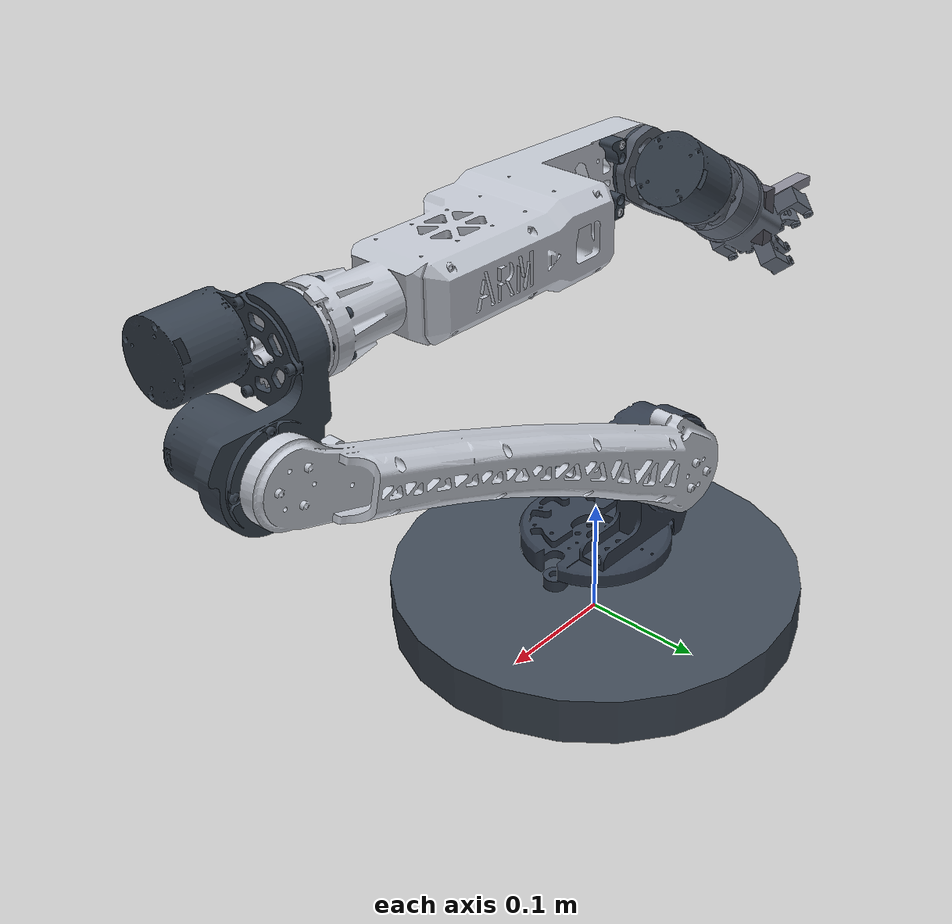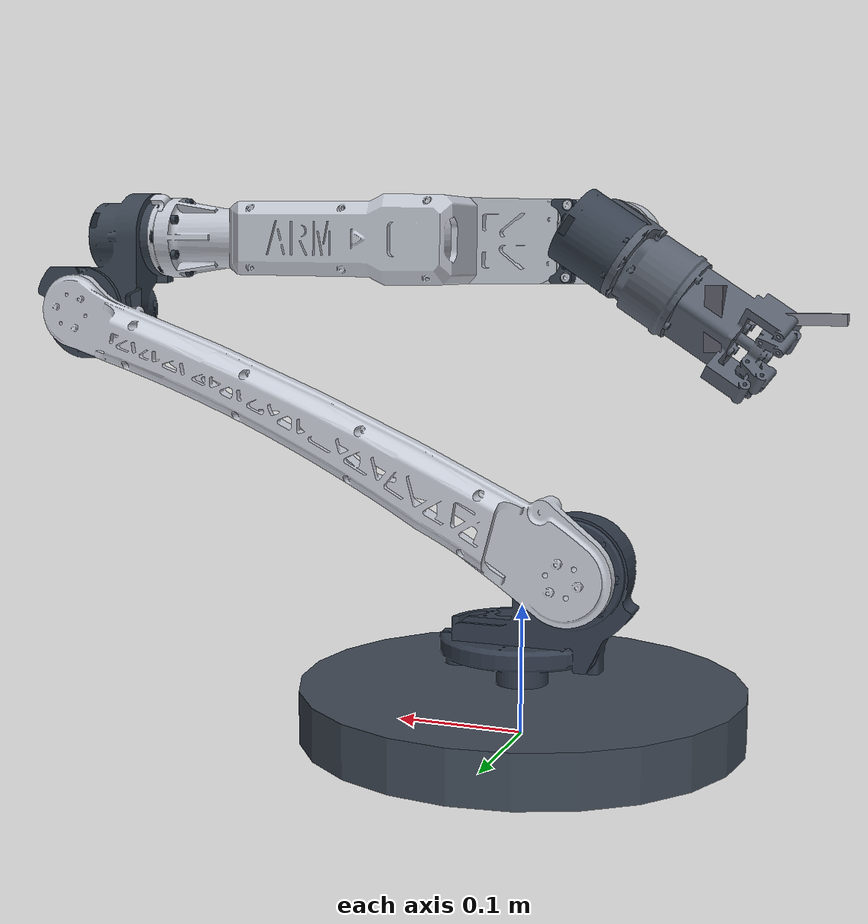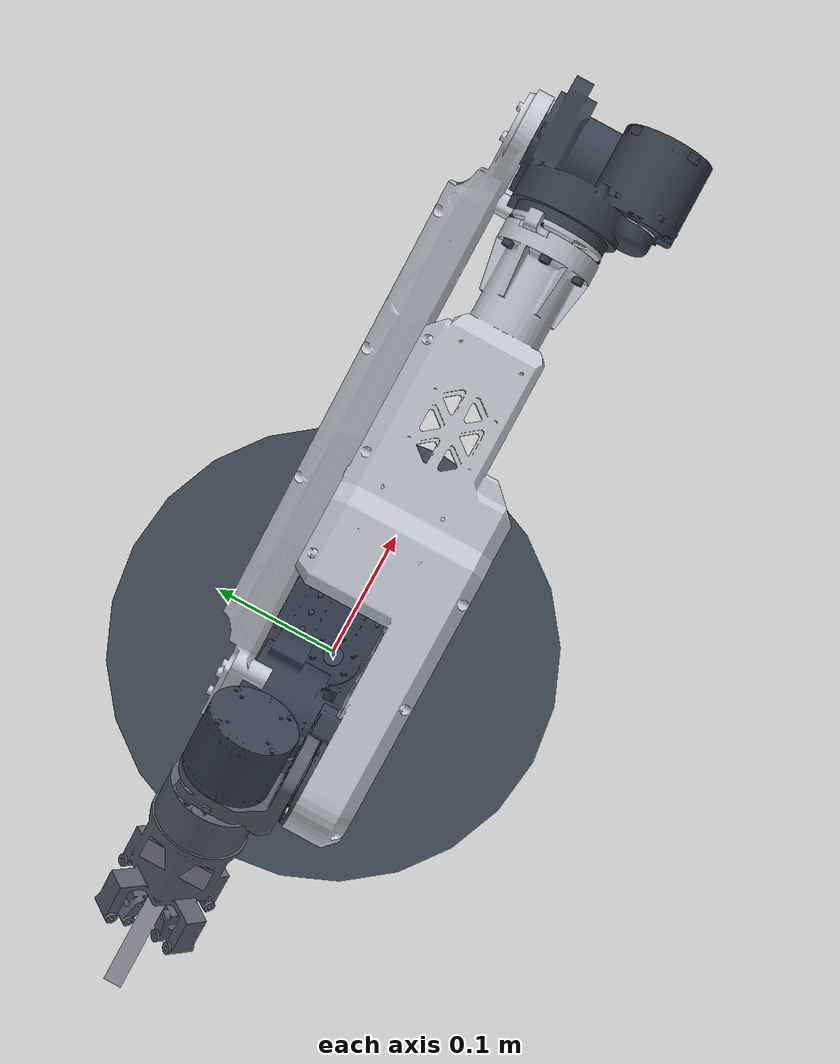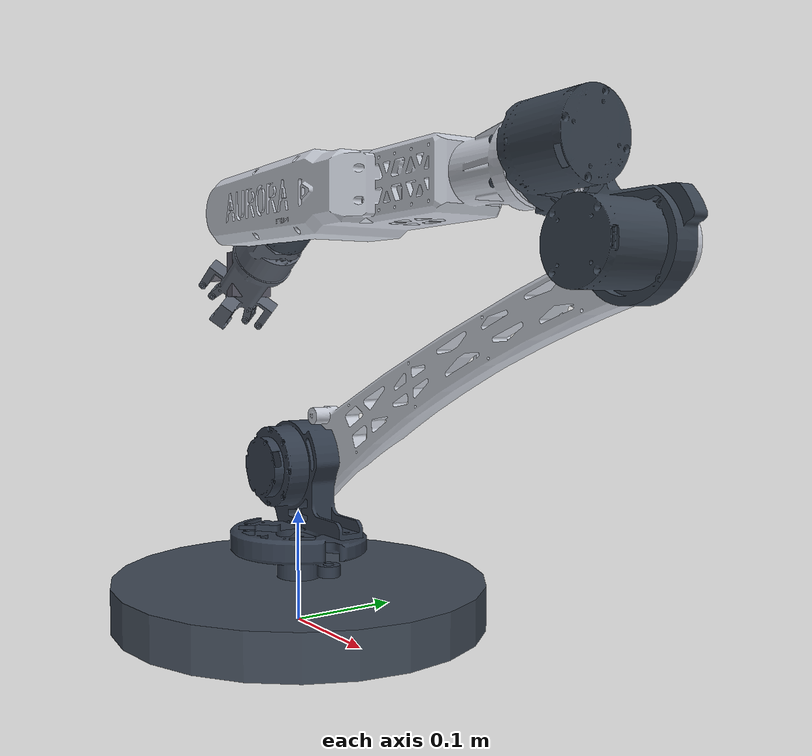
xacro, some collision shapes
<?xml version="1.0"?>
<robot xmlns:xacro="http://www.ros.org/wiki/xacro" name="jaka_c5_pick_place">

  <xacro:arg name="initial_positions_file"
             default="$(find single_arm_jaka_c5_pick_place)/config/initial_positions.yaml"/>
  <xacro:arg name="hardware_plugin" default="mock_components/GenericSystem"/>
  <xacro:arg name="use_gazebo" default="false"/>

  <!-- Root link -->
  <link name="world"/>

  <!-- Xacro imports -->
  <xacro:include filename="fruit_arm_macro.xacro" />
  <xacro:include filename="gripper.xacro" />
  <xacro:include filename="camera_mount.xacro" />

  <!-- Single arm at world origin -->
  <xacro:fruit_arm
      parent="world"
      hardware_plugin="$(arg hardware_plugin)"
      initial_positions_file="$(arg initial_positions_file)" />

  <!-- Gripper attached to the arm's tool flange -->
  <xacro:parallel_jaw_gripper parent="tool_flange" />

  <!-- Gazebo ros2_control plugin — bridges Gazebo physics to controller_manager -->
  <!-- CRITICAL: without this plugin, Gazebo loads the robot as a passive rigid body
       (no actuation, falls under gravity). Only active when use_gazebo:=true. -->
  <xacro:if value="$(arg use_gazebo)">
    <gazebo>
      <plugin filename="libgazebo_ros2_control.so" name="gazebo_ros2_control">
        <robot_param>robot_description</robot_param>
        <robot_param_node>robot_state_publisher</robot_param_node>
        <hold_joints>true</hold_joints>
        <parameters>$(find single_arm_jaka_c5_pick_place)/config/ros2_controllers.yaml</parameters>
      </plugin>
    </gazebo>
    <gazebo>
      <plugin filename="libfruit_grasp_attach_plugin.so"
              name="fruit_grasp_attach_plugin">
        <ros>
          <namespace>/simulation/fruit_gripper</namespace>
        </ros>
        <!-- Gazebo collapses the fixed gripper_base joint into Link_06. -->
        <parent_link>Link_06</parent_link>
        <child_link>apple_link</child_link>
        <model_prefix>fruit_</model_prefix>
        <!-- Link_06 is 67mm behind tool_flange and the 80mm fingers. -->
        <max_distance>0.20</max_distance>
      </plugin>
    </gazebo>
    <gazebo reference="left_finger">
      <mu1>1.2</mu1>
      <mu2>1.2</mu2>
      <kp>100000</kp>
      <kd>10</kd>
      <maxVel>0.05</maxVel>
      <minDepth>0.001</minDepth>
    </gazebo>
    <gazebo reference="right_finger">
      <mu1>1.2</mu1>
      <mu2>1.2</mu2>
      <kp>100000</kp>
      <kd>10</kd>
      <maxVel>0.05</maxVel>
      <minDepth>0.001</minDepth>
    </gazebo>
  </xacro:if>

</robot>

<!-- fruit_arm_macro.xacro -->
<robot xmlns:xacro="http://www.ros.org/wiki/xacro">

  <xacro:macro name="fruit_arm" params="parent hardware_plugin initial_positions_file">
    <xacro:include filename="$(find single_arm_jaka_c5_pick_place)/config/jaka_c5.ros2_control.xacro" />
    <xacro:jaka_c5_arm_ros2_control
        hardware_plugin="${hardware_plugin}"
        initial_positions_file="${initial_positions_file}"/>

    <xacro:macro name="cad_visual" params="link color:='0.70 0.72 0.76 1'">
      <visual>
        <geometry>
          <mesh filename="package://fruit_arm_description/meshes/visual/${link}.STL"
                scale="0.001 0.001 0.001"/>
        </geometry>
        <material name="${link}_cad_material">
          <color rgba="${color}"/>
        </material>
      </visual>
    </xacro:macro>

    <xacro:macro name="simple_inertial" params="mass:='1.0'">
      <inertial>
        <origin xyz="0 0 0" rpy="0 0 0"/>
        <mass value="${mass}"/>
        <inertia ixx="0.01" ixy="0" ixz="0" iyy="0.01" iyz="0" izz="0.01"/>
      </inertial>
    </xacro:macro>

    <joint name="base_joint" type="fixed">
      <parent link="${parent}"/>
      <child link="Link_00"/>
      <origin xyz="0 0 0" rpy="0 0 0"/>
    </joint>

    <link name="Link_00">
      <xacro:simple_inertial mass="10.0"/>
      <xacro:cad_visual link="Link_00" color="0.25 0.29 0.34 1"/>
      <collision>
        <origin xyz="0 0 0.02" rpy="0 0 0"/>
        <geometry><cylinder radius="0.17" length="0.04"/></geometry>
      </collision>
    </link>

    <link name="Link_01">
      <xacro:simple_inertial mass="8.0"/>
      <xacro:cad_visual link="Link_01" color="0.20 0.24 0.30 1"/>
      <collision>
        <origin xyz="-0.024 0.028 0.047" rpy="0 0 0"/>
        <geometry><box size="0.16 0.18 0.15"/></geometry>
      </collision>
    </link>
    <joint name="joint_1" type="revolute">
      <origin xyz="0 0 0.040975" rpy="0 0 0"/>
      <parent link="Link_00"/>
      <child link="Link_01"/>
      <axis xyz="0 0 1"/>
      <limit lower="-3.14" upper="3.14" effort="250" velocity="1.5"/>
    </joint>

    <link name="Link_02">
      <xacro:simple_inertial mass="8.0"/>
      <xacro:cad_visual link="Link_02" color="0.78 0.80 0.84 1"/>
      <collision>
        <origin xyz="0.200 -0.008 0.092" rpy="0 -0.43 -0.04"/>
        <geometry><box size="0.46 0.11 0.12"/></geometry>
      </collision>
    </link>
    <joint name="joint_2" type="revolute">
      <origin xyz="-0.048101 0.056781 0.094025" rpy="0 0 0"/>
      <parent link="Link_01"/>
      <child link="Link_02"/>
      <axis xyz="0 1 0"/>
      <limit lower="-2.60" upper="2.60" effort="250" velocity="1.5"/>
    </joint>

    <link name="Link_03">
      <xacro:simple_inertial mass="5.0"/>
      <xacro:cad_visual link="Link_03" color="0.22 0.26 0.31 1"/>
      <collision>
        <origin xyz="-0.021 -0.016 0.029" rpy="0 0 0"/>
        <geometry><box size="0.13 0.13 0.15"/></geometry>
      </collision>
    </link>
    <joint name="joint_3" type="revolute">
      <origin xyz="0.399412 -0.015781 0.184581" rpy="0 0 0"/>
      <parent link="Link_02"/>
      <child link="Link_03"/>
      <axis xyz="0 1 0"/>
      <limit lower="-2.60" upper="2.60" effort="180" velocity="1.5"/>
    </joint>

    <link name="Link_04">
      <xacro:simple_inertial mass="7.0"/>
      <xacro:cad_visual link="Link_04" color="0.76 0.78 0.82 1"/>
      <collision>
        <origin xyz="-0.186 -0.017 -0.003" rpy="0 0 0.092"/>
        <geometry><box size="0.40 0.12 0.13"/></geometry>
      </collision>
    </link>
    <joint name="joint_4" type="revolute">
      <origin xyz="-0.041455 -0.032800 0.057441" rpy="0 0 0"/>
      <parent link="Link_03"/>
      <child link="Link_04"/>
      <axis xyz="1 0 0"/>
      <limit lower="-3.14" upper="3.14" effort="120" velocity="1.8"/>
    </joint>

    <link name="Link_05">
      <xacro:simple_inertial mass="4.0"/>
      <xacro:cad_visual link="Link_05" color="0.22 0.26 0.31 1"/>
      <collision>
        <origin xyz="-0.013 0.027 -0.009" rpy="0 0 0"/>
        <geometry><box size="0.14 0.14 0.14"/></geometry>
      </collision>
    </link>
    <joint name="joint_5" type="revolute">
      <origin xyz="-0.372174 -0.034450 -0.004890" rpy="0 0 0"/>
      <parent link="Link_04"/>
      <child link="Link_05"/>
      <axis xyz="0 1 0"/>
      <limit lower="-2.60" upper="2.60" effort="100" velocity="1.8"/>
    </joint>

    <link name="Link_06">
      <xacro:simple_inertial mass="2.0"/>
      <xacro:cad_visual link="Link_06" color="0.35 0.38 0.43 1"/>
      <collision>
        <origin xyz="-0.030 0 -0.018" rpy="0 0 0"/>
        <geometry><box size="0.13 0.13 0.16"/></geometry>
      </collision>
    </link>
    <joint name="joint_6" type="revolute">
      <origin xyz="-0.026883 0.054950 -0.018957" rpy="0 0 0"/>
      <parent link="Link_05"/>
      <child link="Link_06"/>
      <axis xyz="-0.834467 0 -0.551058"/>
      <limit lower="-3.14" upper="3.14" effort="80" velocity="2.0"/>
    </joint>

    <link name="tool_flange"/>
    <joint name="tool_flange_joint" type="fixed">
      <origin xyz="-0.058148 0 -0.033366" rpy="0 1.57079632679 0"/>
      <parent link="Link_06"/>
      <child link="tool_flange"/>
    </joint>
  </xacro:macro>
</robot>

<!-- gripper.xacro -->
<robot xmlns:xacro="http://www.ros.org/wiki/xacro">

  <xacro:macro name="parallel_jaw_gripper" params="parent">

    <!-- Gripper base plate -->
    <link name="gripper_base">
      <inertial>
        <origin xyz="0 0 0" rpy="0 0 0" />
        <mass value="0.15" />
        <inertia ixx="0.0001" ixy="0" ixz="0" iyy="0.0001" iyz="0" izz="0.0001" />
      </inertial>
      <visual>
        <origin xyz="0 0 0" rpy="0 0 0" />
        <geometry>
          <box size="0.045 0.045 0.012" />
        </geometry>
        <material name="gripper_base_mat">
          <color rgba="0.35 0.35 0.40 1" />
        </material>
      </visual>
      <collision>
        <origin xyz="0 0 0" rpy="0 0 0" />
        <geometry>
          <box size="0.045 0.045 0.012" />
        </geometry>
      </collision>
    </link>

    <joint name="gripper_base_joint" type="fixed">
      <origin xyz="0 0 0" rpy="0 0 0" />
      <parent link="${parent}" />
      <child link="gripper_base" />
    </joint>

    <!-- Left finger -->
    <link name="left_finger">
      <inertial>
        <origin xyz="0 0 -0.04" rpy="0 0 0" />
        <mass value="0.08" />
        <inertia ixx="0.00005" ixy="0" ixz="0" iyy="0.00005" iyz="0" izz="0.00005" />
      </inertial>
      <visual>
        <origin xyz="0 0 -0.04" rpy="0 0 0" />
        <geometry>
          <box size="0.008 0.012 0.08" />
        </geometry>
        <material name="left_finger_mat">
          <color rgba="0.55 0.55 0.60 1" />
        </material>
      </visual>
      <collision>
        <origin xyz="0 0 -0.04" rpy="0 0 0" />
        <geometry>
          <box size="0.008 0.012 0.08" />
        </geometry>
      </collision>
    </link>

    <joint name="left_finger_joint" type="prismatic">
      <origin xyz="0 0 -0.006" rpy="0 0 0" />
      <parent link="gripper_base" />
      <child link="left_finger" />
      <axis xyz="0 1 0" />
      <limit lower="0.0" upper="0.06" effort="50" velocity="0.2" />
    </joint>

    <!-- Left finger contact frame (tip center for grasp detection) -->
    <link name="left_finger_tip"/>
    <joint name="left_finger_tip_joint" type="fixed">
      <origin xyz="0 0 -0.08" rpy="0 0 0" />
      <parent link="left_finger" />
      <child link="left_finger_tip" />
    </joint>

    <!-- Right finger -->
    <link name="right_finger">
      <inertial>
        <origin xyz="0 0 -0.04" rpy="0 0 0" />
        <mass value="0.08" />
        <inertia ixx="0.00005" ixy="0" ixz="0" iyy="0.00005" iyz="0" izz="0.00005" />
      </inertial>
      <visual>
        <origin xyz="0 0 -0.04" rpy="0 0 0" />
        <geometry>
          <box size="0.008 0.012 0.08" />
        </geometry>
        <material name="right_finger_mat">
          <color rgba="0.55 0.55 0.60 1" />
        </material>
      </visual>
      <collision>
        <origin xyz="0 0 -0.04" rpy="0 0 0" />
        <geometry>
          <box size="0.008 0.012 0.08" />
        </geometry>
      </collision>
    </link>

    <joint name="right_finger_joint" type="prismatic">
      <origin xyz="0 0 -0.006" rpy="0 0 0" />
      <parent link="gripper_base" />
      <child link="right_finger" />
      <axis xyz="0 1 0" />
      <limit lower="-0.06" upper="0.0" effort="50" velocity="0.2" />
    </joint>

    <!-- Right finger contact frame (tip center for grasp detection) -->
    <link name="right_finger_tip"/>
    <joint name="right_finger_tip_joint" type="fixed">
      <origin xyz="0 0 -0.08" rpy="0 0 0" />
      <parent link="right_finger" />
      <child link="right_finger_tip" />
    </joint>

  </xacro:macro>
</robot>
